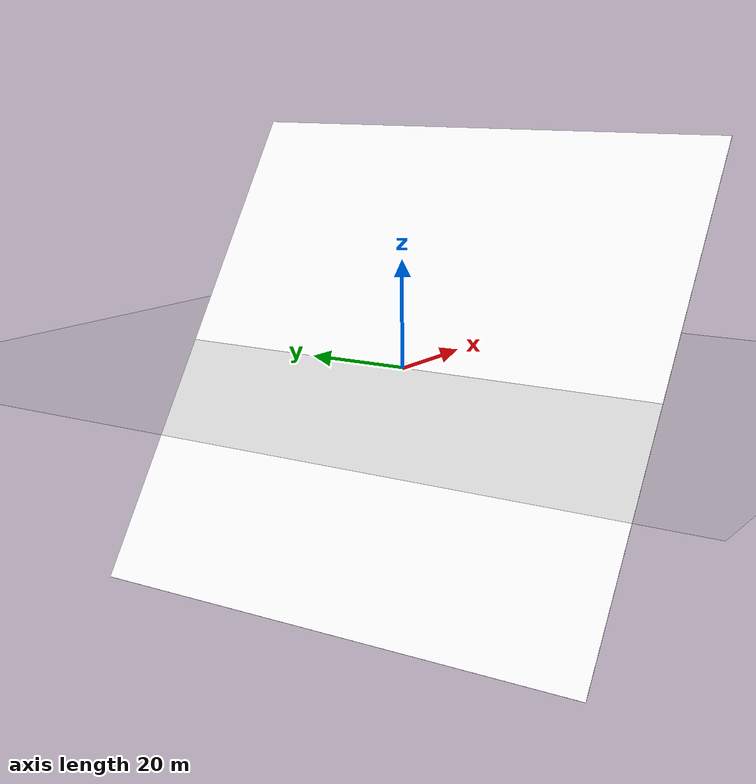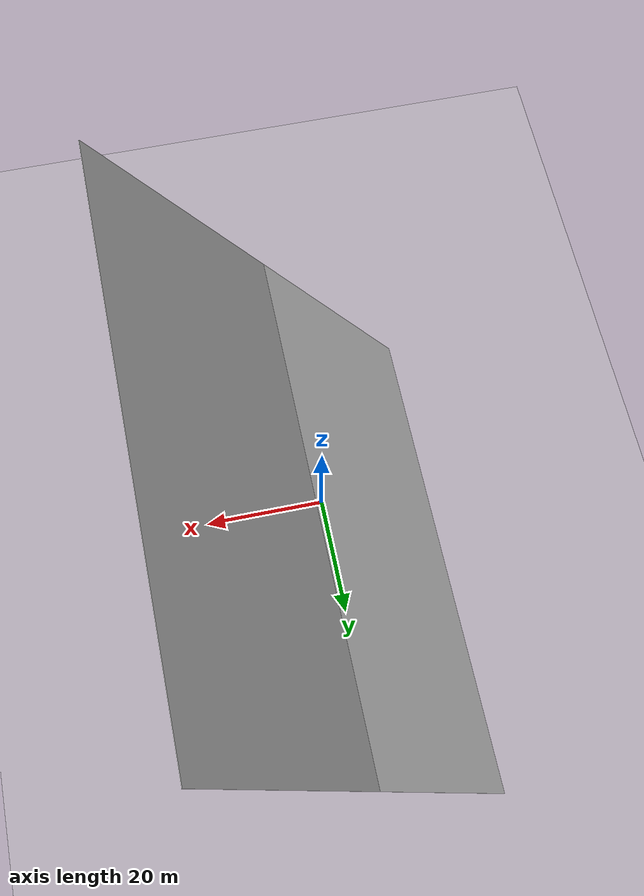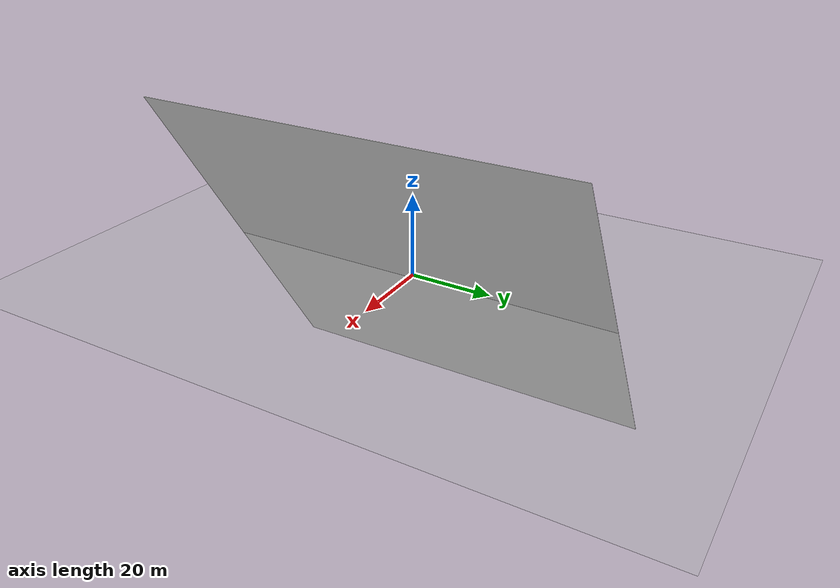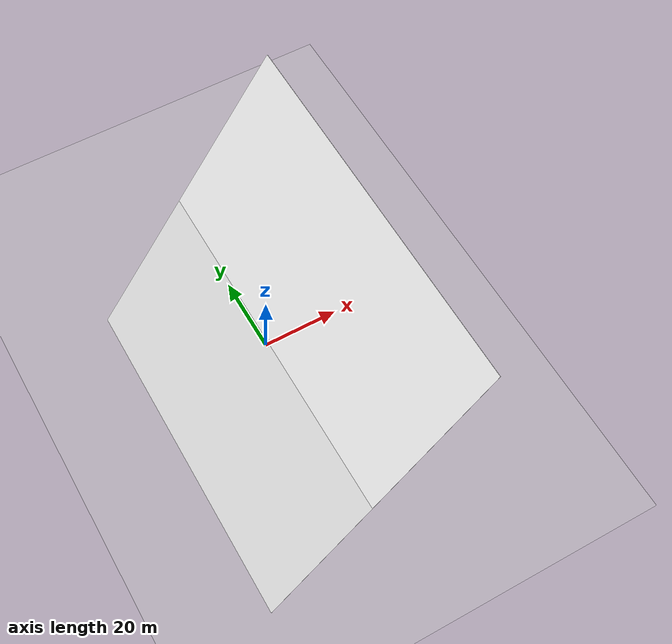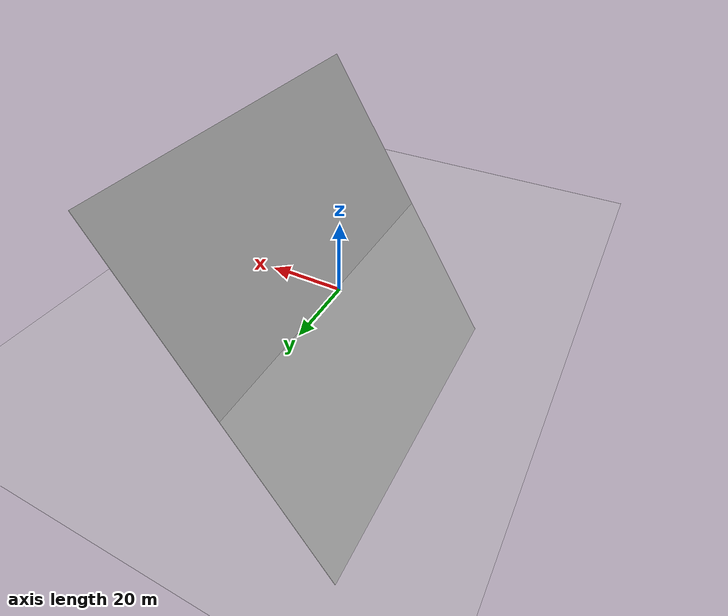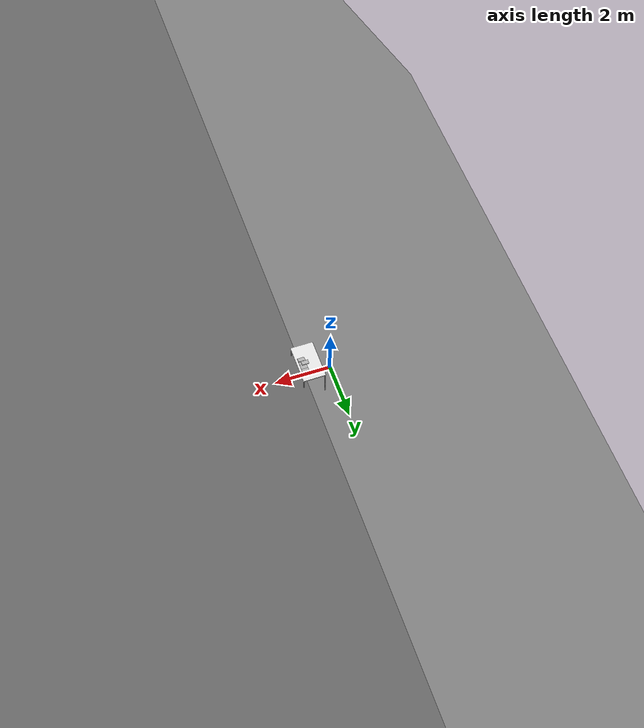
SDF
<sdf version="1.6">
 <world name="default">
  <model name="ground_plane">
   <static>1</static>
   <link name="link">
    <collision name="collision">
     <geometry><plane><normal>0 0 1</normal><size>100 100</size></plane></geometry>
     <surface><friction><ode><mu>100</mu><mu2>50</mu2></ode></friction></surface>
    </collision>
    <visual name="visual">
     <cast_shadows>0</cast_shadows>
     <geometry><plane><normal>0 0 1</normal><size>100 100</size></plane></geometry>
     <material>
      <script><uri>file://media/materials/scripts/gazebo.material</uri><name>Gazebo/Grey</name></script>
     </material>
    </visual>
   </link>
  </model>
  <model name="wall_plane">
   <pose>1.0 0 0 0 -1.0 0</pose>
   <static>1</static>
   <link name="link">
    <collision name="collision">
     <geometry><plane><normal>0 0 1</normal><size>100 100</size></plane></geometry>
     <surface><friction><ode><mu>100</mu><mu2>50</mu2></ode></friction></surface>
    </collision>
    <visual name="visual">
     <cast_shadows>0</cast_shadows>
     <geometry><plane><normal>0 0 1</normal><size>100 100</size></plane></geometry>
     <material>
      <script><uri>file://media/materials/scripts/gazebo.material</uri><name>Gazebo/White</name></script>
     </material>
    </visual>
   </link>
  </model>
  <gravity>0 0 -9.8</gravity>
  <magnetic_field>6e-06 2.3e-05 -4.2e-05</magnetic_field>
  <atmosphere type="adiabatic"/>
  <physics name="default_physics" default="0" type="ode">
   <max_step_size>0.001</max_step_size>
   <real_time_factor>1</real_time_factor>
   <real_time_update_rate>1000</real_time_update_rate>
  </physics>
  <scene><ambient>0.4 0.4 0.4 1</ambient><background>0.7 0.7 0.7 1</background><shadows>1</shadows></scene>
  <spherical_coordinates>
   <surface_model>EARTH_WGS84</surface_model>
   <latitude_deg>0</latitude_deg>
   <longitude_deg>0</longitude_deg>
   <elevation>0</elevation>
   <heading_deg>0</heading_deg>
  </spherical_coordinates>
  <model name="kinect2_victor_head">
   <pose>0.07 0 1.5 0 0.5 0</pose>
   <static>1</static>
   <link name="kinect2_victor_head">
    <inertial>
     <mass>1</mass>
     <inertia><ixx>1</ixx><ixy>0</ixy><ixz>0</ixz><iyy>1</iyy><iyz>0</iyz><izz>1</izz></inertia>
    </inertial>
    <collision name="collision"><geometry><box><size>0.1 0.1 0.1</size></box></geometry></collision>
    <visual name="visual"><geometry><box><size>0.1 0.1 0.1</size></box></geometry></visual>
    <sensor name="camera" type="depth">
     <camera name="__default__">
      <horizontal_fov>1.578</horizontal_fov>
      <image><width>1920</width><height>1080</height><format>B8G8R8</format></image>
      <clip><near>0.05</near><far>2.5</far></clip>
      <depth_camera><output>depths</output></depth_camera>
     </camera>
     <plugin name="kinect2_victor_head_plugin" filename="libgazebo_ros_openni_kinect.so">
      <cameraName>kinect2_victor_head</cameraName>
      <alwaysOn>1</alwaysOn>
      <updateRate>3</updateRate>
      <imageTopicName>hd/image_color_rect</imageTopicName>
      <depthImageTopicName>hd/image_depth_rect</depthImageTopicName>
      <pointCloudTopicName>hd/points</pointCloudTopicName>
      <cameraInfoTopicName>hd/camera_info</cameraInfoTopicName>
      <depthImageCameraInfoTopicName>hd/camera_info</depthImageCameraInfoTopicName>
      <frameName>kinect2_victor_head_optical_frame</frameName>
      <baseline>0.07</baseline>
      <distortion_k1>0.0</distortion_k1>
      <distortion_k2>0.0</distortion_k2>
      <distortion_k3>0.0</distortion_k3>
      <distortion_t1>0.0</distortion_t1>
      <distortion_t2>0.0</distortion_t2>
      <pointCloudCutoff>0.05</pointCloudCutoff>
      <robotNamespace>/</robotNamespace>
     </plugin>
     <always_on>1</always_on>
     <update_rate>3</update_rate>
    </sensor>
    <gravity>0</gravity>
   </link>
  </model>
  <model name="table">
   <static>1</static>
   <link name="link">
    <collision name="surface">
     <pose>0 0 1 0 -0 0</pose>
     <geometry><box><size>1.5 0.8 0.03</size></box></geometry>
     <surface><friction><ode><mu>0.6</mu><mu2>0.6</mu2></ode></friction></surface>
    </collision>
    <visual name="visual1">
     <pose>0 0 1 0 -0 0</pose>
     <geometry><box><size>1.4 0.8 0.04</size></box></geometry>
     <material>
      <script><uri>file://media/materials/scripts/gazebo.material</uri><name>Gazebo/White</name></script>
     </material>
    </visual>
    <collision name="front_left_leg">
     <pose>0.68 0.38 0.5 0 -0 0</pose>
     <geometry><cylinder><radius>0.02</radius><length>1</length></cylinder></geometry>
    </collision>
    <visual name="front_left_leg">
     <pose>0.68 0.38 0.5 0 -0 0</pose>
     <geometry><cylinder><radius>0.02</radius><length>1</length></cylinder></geometry>
     <material>
      <script><uri>file://media/materials/scripts/gazebo.material</uri><name>Gazebo/Grey</name></script>
     </material>
    </visual>
    <collision name="front_right_leg">
     <pose>0.68 -0.38 0.5 0 -0 0</pose>
     <geometry><cylinder><radius>0.02</radius><length>1</length></cylinder></geometry>
    </collision>
    <visual name="front_right_leg">
     <pose>0.68 -0.38 0.5 0 -0 0</pose>
     <geometry><cylinder><radius>0.02</radius><length>1</length></cylinder></geometry>
     <material>
      <script><uri>file://media/materials/scripts/gazebo.material</uri><name>Gazebo/Grey</name></script>
     </material>
    </visual>
    <collision name="back_right_leg">
     <pose>-0.68 -0.38 0.5 0 -0 0</pose>
     <geometry><cylinder><radius>0.02</radius><length>1</length></cylinder></geometry>
    </collision>
    <visual name="back_right_leg">
     <pose>-0.68 -0.38 0.5 0 -0 0</pose>
     <geometry><cylinder><radius>0.02</radius><length>1</length></cylinder></geometry>
     <material>
      <script><uri>file://media/materials/scripts/gazebo.material</uri><name>Gazebo/Grey</name></script>
     </material>
    </visual>
    <collision name="back_left_leg">
     <pose>-0.68 0.38 0.5 0 -0 0</pose>
     <geometry><cylinder><radius>0.02</radius><length>1</length></cylinder></geometry>
    </collision>
    <visual name="back_left_leg">
     <pose>-0.68 0.38 0.5 0 -0 0</pose>
     <geometry><cylinder><radius>0.02</radius><length>1</length></cylinder></geometry>
     <material>
      <script><uri>file://media/materials/scripts/gazebo.material</uri><name>Gazebo/Grey</name></script>
     </material>
    </visual>
    <inertial>
     <inertia><ixx>1</ixx><ixy>0</ixy><ixz>0</ixz><iyy>1</iyy><iyz>0</iyz><izz>1</izz></inertia>
     <mass>1</mass>
    </inertial>
   </link>
   <pose>0.8 0 -0.2 0 0 -1.5708</pose>
  </model>
  <light name="user_spot_light_0" type="spot">
   <pose>0 0 20 0 -0 0</pose>
   <diffuse>0.5 0.5 0.5 1</diffuse>
   <specular>0.1 0.1 0.1 1</specular>
   <direction>0 0 -1</direction>
   <attenuation>
    <range>20</range>
    <constant>0.5</constant>
    <linear>0.01</linear>
    <quadratic>0.001</quadratic>
   </attenuation>
   <cast_shadows>0</cast_shadows>
   <spot><inner_angle>0.6</inner_angle><outer_angle>1</outer_angle><falloff>1</falloff></spot>
  </light>
  <audio><device>default</device></audio>
  <model name="book_16">
   <link name="cover">
    <pose>0 -0.000108 0.015405 0 -0 0</pose>
    <inertial>
     <mass>1</mass>
     <inertia>
      <ixx>0.166667</ixx>
      <ixy>0</ixy>
      <ixz>0</ixz>
      <iyy>0.166667</iyy>
      <iyz>0</iyz>
      <izz>0.166667</izz>
     </inertia>
    </inertial>
    <visual name="visual">
     <geometry><box><size>0.245 0.16 0.03</size></box></geometry>
     <material>
      <script>
       <uri>model://book_16/materials/scripts</uri>
       <uri>model://book_16/materials/textures</uri>
       <name>book_16</name>
      </script>
     </material>
    </visual>
    <collision name="collision"><geometry><box><size>0.245 0.16 0.03</size></box></geometry></collision>
   </link>
   <static>0</static>
   <pose>1.00151 0.002871 0.814585 0 -0 5.4e-05</pose>
  </model>
  <model name="book_17">
   <link name="cover">
    <pose>0 -0.000108 0.015405 0 -0 0</pose>
    <inertial>
     <mass>1</mass>
     <inertia>
      <ixx>0.166667</ixx>
      <ixy>0</ixy>
      <ixz>0</ixz>
      <iyy>0.166667</iyy>
      <iyz>0</iyz>
      <izz>0.166667</izz>
     </inertia>
    </inertial>
    <visual name="visual">
     <geometry><box><size>0.245 0.16 0.03</size></box></geometry>
     <material>
      <script>
       <uri>model://book_17/materials/scripts</uri>
       <uri>model://book_17/materials/textures</uri>
       <name>book_17</name>
      </script>
     </material>
    </visual>
    <collision name="collision"><geometry><box><size>0.245 0.16 0.03</size></box></geometry></collision>
   </link>
   <static>0</static>
   <pose>1.00246 -0.124543 0.833234 0.2349 1.6e-05 2.7e-05</pose>
  </model>
  <model name="book_19">
   <link name="cover">
    <pose>0 -0.000108 0.015405 0 -0 0</pose>
    <inertial>
     <mass>1</mass>
     <inertia>
      <ixx>0.166667</ixx>
      <ixy>0</ixy>
      <ixz>0</ixz>
      <iyy>0.166667</iyy>
      <iyz>0</iyz>
      <izz>0.166667</izz>
     </inertia>
    </inertial>
    <visual name="visual">
     <geometry><box><size>0.245 0.16 0.03</size></box></geometry>
     <material>
      <script>
       <uri>model://book_19/materials/scripts</uri>
       <uri>model://book_19/materials/textures</uri>
       <name>book_19</name>
      </script>
     </material>
    </visual>
    <collision name="collision"><geometry><box><size>0.245 0.16 0.03</size></box></geometry></collision>
   </link>
   <static>0</static>
   <pose>0.921909 0.034412 0.854409 0.122625 -0.000446 0.000881</pose>
  </model>
  <model name="book_21">
   <link name="cover">
    <pose>0 -0.000108 0.005 0 -0 0</pose>
    <inertial>
     <mass>1</mass>
     <inertia>
      <ixx>0.166667</ixx>
      <ixy>0</ixy>
      <ixz>0</ixz>
      <iyy>0.166667</iyy>
      <iyz>0</iyz>
      <izz>0.166667</izz>
     </inertia>
    </inertial>
    <visual name="visual">
     <geometry><box><size>0.245 0.16 0.01</size></box></geometry>
     <material>
      <script>
       <uri>model://book_21/materials/scripts</uri>
       <uri>model://book_21/materials/textures</uri>
       <name>book_21</name>
      </script>
     </material>
    </visual>
    <collision name="collision"><geometry><box><size>0.245 0.16 0.01</size></box></geometry></collision>
   </link>
   <static>0</static>
   <pose>1.00451 0.142575 0.832024 -0.213645 -0.000197 -0.000446</pose>
  </model>
  <model name="book_7">
   <link name="cover">
    <pose>0 -0.000108 0.005 0 -0 0</pose>
    <inertial>
     <mass>1</mass>
     <inertia>
      <ixx>0.166667</ixx>
      <ixy>0</ixy>
      <ixz>0</ixz>
      <iyy>0.166667</iyy>
      <iyz>0</iyz>
      <izz>0.166667</izz>
     </inertia>
    </inertial>
    <visual name="visual">
     <geometry><box><size>0.245 0.16 0.01</size></box></geometry>
     <material>
      <script>
       <uri>model://book_7/materials/scripts</uri>
       <uri>model://book_7/materials/textures</uri>
       <name>book_7</name>
      </script>
     </material>
    </visual>
    <collision name="collision"><geometry><box><size>0.245 0.16 0.01</size></box></geometry></collision>
   </link>
   <static>0</static>
   <pose>1.00007 0.302882 0.814965 -2e-06 -2e-06 -0.000436</pose>
  </model>
 </world>
</sdf>
